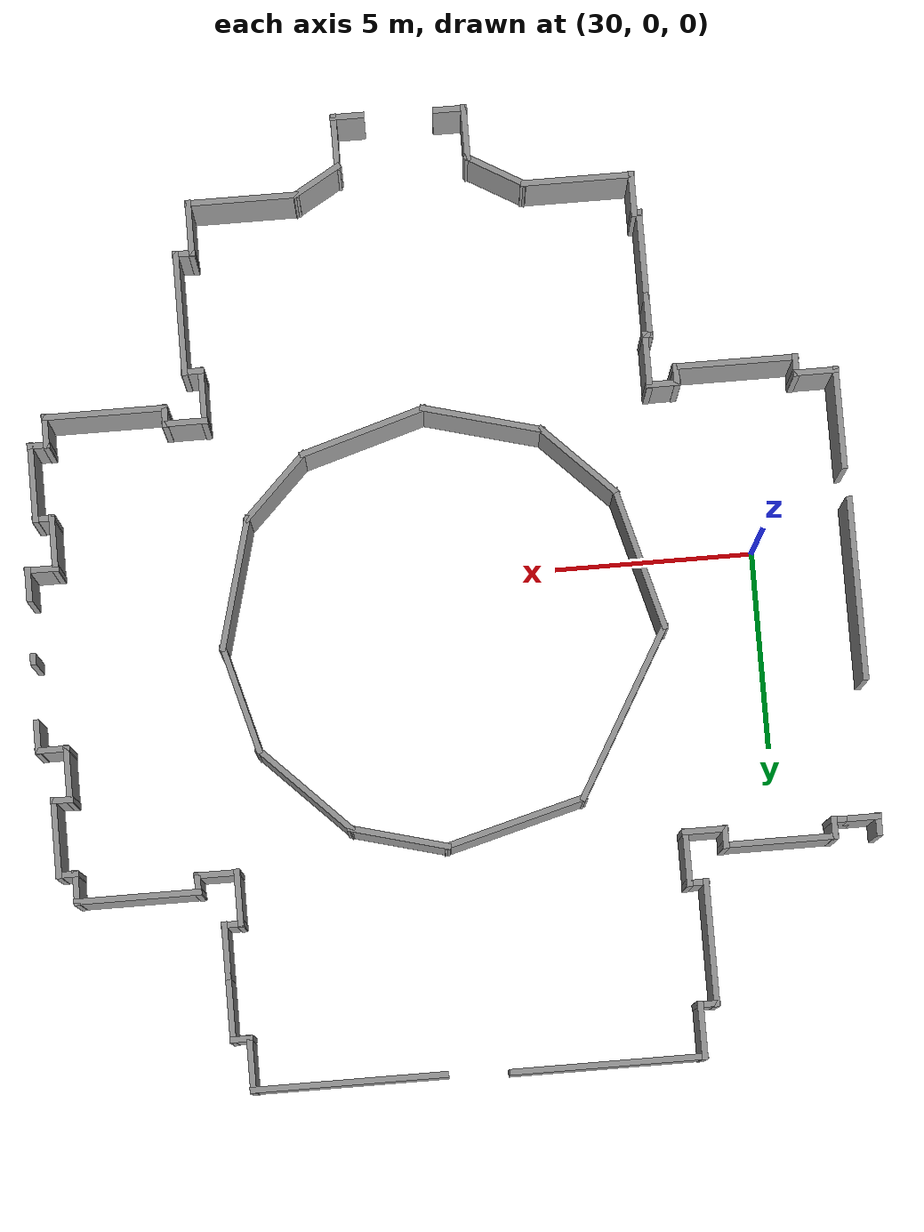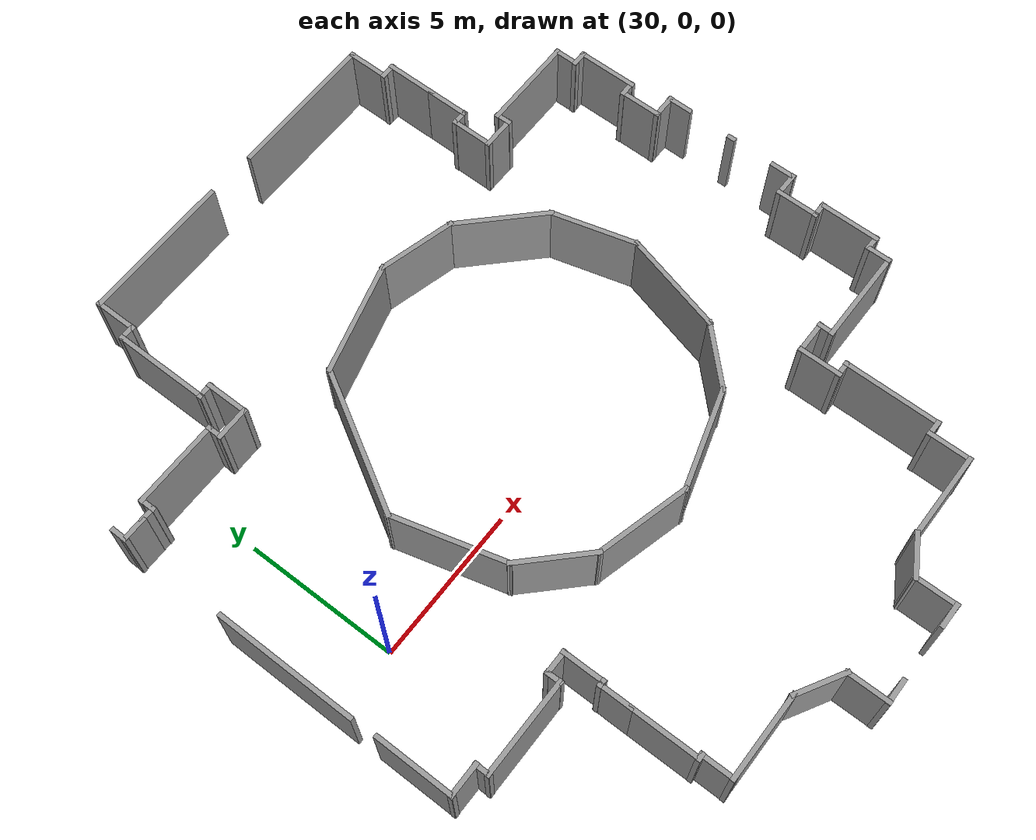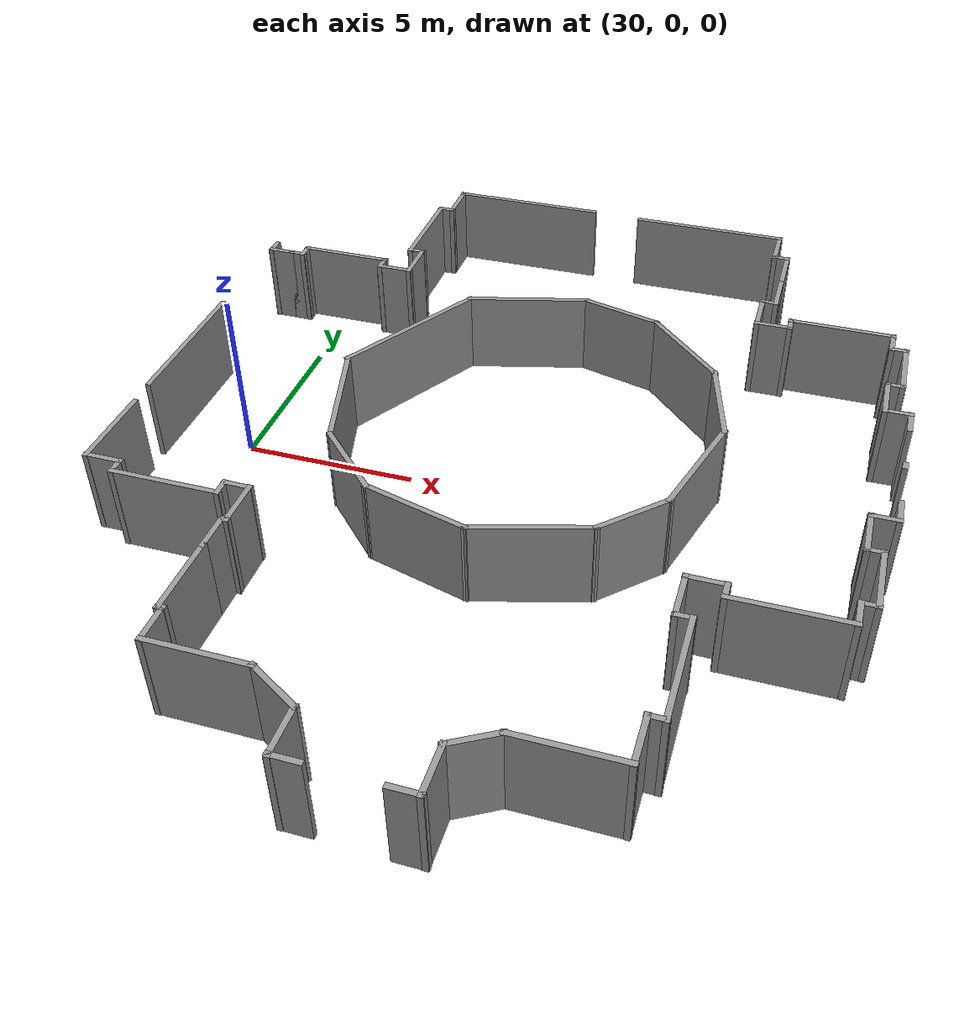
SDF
<sdf version="1.7">
 <model name="TD_n1">
  <pose>-8.28511 -2.84735 0 0 -0 0</pose>
  <link name="Wall_300">
   <collision name="Wall_300_Collision">
    <geometry><box><size>0.58 0.15 2.5</size></box></geometry>
    <pose>0 0 1.25 0 -0 0</pose>
   </collision>
   <visual name="Wall_300_Visual">
    <pose>0 0 1.25 0 -0 0</pose>
    <geometry><box><size>0.58 0.15 2.5</size></box></geometry>
    <material>
     <script><uri>file://media/materials/scripts/gazebo.material</uri><name>Gazebo/Grey</name></script>
     <ambient>1 1 1 1</ambient>
    </material>
    <meta><layer>0</layer></meta>
   </visual>
   <pose>35.9035 10.142 0 0 -0 -1.5708</pose>
  </link>
  <link name="Wall_301">
   <collision name="Wall_301_Collision">
    <geometry><box><size>0.87 0.15 2.5</size></box></geometry>
    <pose>0 0 1.25 0 -0 0</pose>
   </collision>
   <visual name="Wall_301_Visual">
    <pose>0 0 1.25 0 -0 0</pose>
    <geometry><box><size>0.87 0.15 2.5</size></box></geometry>
    <material>
     <script><uri>file://media/materials/scripts/gazebo.material</uri><name>Gazebo/Grey</name></script>
     <ambient>1 1 1 1</ambient>
    </material>
    <meta><layer>0</layer></meta>
   </visual>
   <pose>36.2515 9.93897 0 0 -0 0</pose>
  </link>
  <link name="Wall_302">
   <collision name="Wall_302_Collision">
    <geometry><box><size>0.58 0.15 2.5</size></box></geometry>
    <pose>0 0 1.25 0 -0 0</pose>
   </collision>
   <visual name="Wall_302_Visual">
    <pose>0 0 1.25 0 -0 0</pose>
    <geometry><box><size>0.58 0.15 2.5</size></box></geometry>
    <material>
     <script><uri>file://media/materials/scripts/gazebo.material</uri><name>Gazebo/Grey</name></script>
     <ambient>1 1 1 1</ambient>
    </material>
    <meta><layer>0</layer></meta>
   </visual>
   <pose>36.8025 9.93897 0 0 -0 0</pose>
  </link>
  <link name="Wall_303">
   <collision name="Wall_303_Collision">
    <geometry><box><size>0.58 0.15 2.5</size></box></geometry>
    <pose>0 0 1.25 0 -0 0</pose>
   </collision>
   <visual name="Wall_303_Visual">
    <pose>0 0 1.25 0 -0 0</pose>
    <geometry><box><size>0.58 0.15 2.5</size></box></geometry>
    <material>
     <script><uri>file://media/materials/scripts/gazebo.material</uri><name>Gazebo/Grey</name></script>
     <ambient>1 1 1 1</ambient>
    </material>
    <meta><layer>0</layer></meta>
   </visual>
   <pose>37.0055 10.142 0 0 -0 1.5708</pose>
  </link>
  <link name="Wall_304">
   <collision name="Wall_304_Collision">
    <geometry><box><size>2.9 0.15 2.5</size></box></geometry>
    <pose>0 0 1.25 0 -0 0</pose>
   </collision>
   <visual name="Wall_304_Visual">
    <pose>0 0 1.25 0 -0 0</pose>
    <geometry><box><size>2.9 0.15 2.5</size></box></geometry>
    <material>
     <script><uri>file://media/materials/scripts/gazebo.material</uri><name>Gazebo/Grey</name></script>
     <ambient>1 1 1 1</ambient>
    </material>
    <meta><layer>0</layer></meta>
   </visual>
   <pose>38.3685 10.345 0 0 -0 0</pose>
  </link>
  <link name="Wall_305">
   <collision name="Wall_305_Collision">
    <geometry><box><size>0.58 0.15 2.5</size></box></geometry>
    <pose>0 0 1.25 0 -0 0</pose>
   </collision>
   <visual name="Wall_305_Visual">
    <pose>0 0 1.25 0 -0 0</pose>
    <geometry><box><size>0.58 0.15 2.5</size></box></geometry>
    <material>
     <script><uri>file://media/materials/scripts/gazebo.material</uri><name>Gazebo/Grey</name></script>
     <ambient>1 1 1 1</ambient>
    </material>
    <meta><layer>0</layer></meta>
   </visual>
   <pose>39.7315 10.142 0 0 -0 -1.5708</pose>
  </link>
  <link name="Wall_306">
   <collision name="Wall_306_Collision">
    <geometry><box><size>1.16 0.15 2.5</size></box></geometry>
    <pose>0 0 1.25 0 -0 0</pose>
   </collision>
   <visual name="Wall_306_Visual">
    <pose>0 0 1.25 0 -0 0</pose>
    <geometry><box><size>1.16 0.15 2.5</size></box></geometry>
    <material>
     <script><uri>file://media/materials/scripts/gazebo.material</uri><name>Gazebo/Grey</name></script>
     <ambient>1 1 1 1</ambient>
    </material>
    <meta><layer>0</layer></meta>
   </visual>
   <pose>40.2245 9.93897 0 0 -0 0</pose>
  </link>
  <link name="Wall_307">
   <collision name="Wall_307_Collision">
    <geometry><box><size>1.45 0.15 2.5</size></box></geometry>
    <pose>0 0 1.25 0 -0 0</pose>
   </collision>
   <visual name="Wall_307_Visual">
    <pose>0 0 1.25 0 -0 0</pose>
    <geometry><box><size>1.45 0.15 2.5</size></box></geometry>
    <material>
     <script><uri>file://media/materials/scripts/gazebo.material</uri><name>Gazebo/Grey</name></script>
     <ambient>1 1 1 1</ambient>
    </material>
    <meta><layer>0</layer></meta>
   </visual>
   <pose>40.7175 10.577 0 0 -0 1.5708</pose>
  </link>
  <link name="Wall_308">
   <collision name="Wall_308_Collision">
    <geometry><box><size>0.58 0.15 2.5</size></box></geometry>
    <pose>0 0 1.25 0 -0 0</pose>
   </collision>
   <visual name="Wall_308_Visual">
    <pose>0 0 1.25 0 -0 0</pose>
    <geometry><box><size>0.58 0.15 2.5</size></box></geometry>
    <material>
     <script><uri>file://media/materials/scripts/gazebo.material</uri><name>Gazebo/Grey</name></script>
     <ambient>1 1 1 1</ambient>
    </material>
    <meta><layer>0</layer></meta>
   </visual>
   <pose>40.5145 11.215 0 0 -0 3.14159</pose>
  </link>
  <link name="Wall_309">
   <collision name="Wall_309_Collision">
    <geometry><box><size>3.19 0.15 2.5</size></box></geometry>
    <pose>0 0 1.25 0 -0 0</pose>
   </collision>
   <visual name="Wall_309_Visual">
    <pose>0 0 1.25 0 -0 0</pose>
    <geometry><box><size>3.19 0.15 2.5</size></box></geometry>
    <material>
     <script><uri>file://media/materials/scripts/gazebo.material</uri><name>Gazebo/Grey</name></script>
     <ambient>1 1 1 1</ambient>
    </material>
    <meta><layer>0</layer></meta>
   </visual>
   <pose>40.3115 12.723 0 0 -0 1.5708</pose>
  </link>
  <link name="Wall_310">
   <collision name="Wall_310_Collision">
    <geometry><box><size>0.58 0.15 2.5</size></box></geometry>
    <pose>0 0 1.25 0 -0 0</pose>
   </collision>
   <visual name="Wall_310_Visual">
    <pose>0 0 1.25 0 -0 0</pose>
    <geometry><box><size>0.58 0.15 2.5</size></box></geometry>
    <material>
     <script><uri>file://media/materials/scripts/gazebo.material</uri><name>Gazebo/Grey</name></script>
     <ambient>1 1 1 1</ambient>
    </material>
    <meta><layer>0</layer></meta>
   </visual>
   <pose>40.5145 14.231 0 0 -0 0</pose>
  </link>
  <link name="Wall_311">
   <collision name="Wall_311_Collision">
    <geometry><box><size>1.45 0.15 2.5</size></box></geometry>
    <pose>0 0 1.25 0 -0 0</pose>
   </collision>
   <visual name="Wall_311_Visual">
    <pose>0 0 1.25 0 -0 0</pose>
    <geometry><box><size>1.45 0.15 2.5</size></box></geometry>
    <material>
     <script><uri>file://media/materials/scripts/gazebo.material</uri><name>Gazebo/Grey</name></script>
     <ambient>1 1 1 1</ambient>
    </material>
    <meta><layer>0</layer></meta>
   </visual>
   <pose>40.7175 14.869 0 0 -0 1.5708</pose>
  </link>
  <link name="Wall_312">
   <collision name="Wall_312_Collision">
    <geometry><box><size>4.93 0.15 2.5</size></box></geometry>
    <pose>0 0 1.25 0 -0 0</pose>
   </collision>
   <visual name="Wall_312_Visual">
    <pose>0 0 1.25 0 -0 0</pose>
    <geometry><box><size>4.93 0.15 2.5</size></box></geometry>
    <material>
     <script><uri>file://media/materials/scripts/gazebo.material</uri><name>Gazebo/Grey</name></script>
     <ambient>1 1 1 1</ambient>
    </material>
    <meta><layer>0</layer></meta>
   </visual>
   <pose>43.0955 15.507 0 0 -0 0</pose>
  </link>
  <link name="Wall_314">
   <collision name="Wall_314_Collision">
    <geometry><box><size>4.64 0.15 2.5</size></box></geometry>
    <pose>0 0 1.25 0 -0 0</pose>
   </collision>
   <visual name="Wall_314_Visual">
    <pose>0 0 1.25 0 -0 0</pose>
    <geometry><box><size>4.64 0.15 2.5</size></box></geometry>
    <material>
     <script><uri>file://media/materials/scripts/gazebo.material</uri><name>Gazebo/Grey</name></script>
     <ambient>1 1 1 1</ambient>
    </material>
    <meta><layer>0</layer></meta>
   </visual>
   <pose>35.8878 4.20451 0 0 -0 -1.5708</pose>
  </link>
  <link name="Wall_316">
   <collision name="Wall_316_Collision">
    <geometry><box><size>2.61 0.15 2.5</size></box></geometry>
    <pose>0 0 1.25 0 -0 0</pose>
   </collision>
   <visual name="Wall_316_Visual">
    <pose>0 0 1.25 0 -0 0</pose>
    <geometry><box><size>2.61 0.15 2.5</size></box></geometry>
    <material>
     <script><uri>file://media/materials/scripts/gazebo.material</uri><name>Gazebo/Grey</name></script>
     <ambient>1 1 1 1</ambient>
    </material>
    <meta><layer>0</layer></meta>
   </visual>
   <pose>35.933 -0.128399 0 0 -0 -1.5708</pose>
  </link>
  <link name="Wall_317">
   <collision name="Wall_317_Collision">
    <geometry><box><size>1.16 0.15 2.5</size></box></geometry>
    <pose>0 0 1.25 0 -0 0</pose>
   </collision>
   <visual name="Wall_317_Visual">
    <pose>0 0 1.25 0 -0 0</pose>
    <geometry><box><size>1.16 0.15 2.5</size></box></geometry>
    <material>
     <script><uri>file://media/materials/scripts/gazebo.material</uri><name>Gazebo/Grey</name></script>
     <ambient>1 1 1 1</ambient>
    </material>
    <meta><layer>0</layer></meta>
   </visual>
   <pose>36.426 -1.3464 0 0 -0 0</pose>
  </link>
  <link name="Wall_318">
   <collision name="Wall_318_Collision">
    <geometry><box><size>0.58 0.15 2.5</size></box></geometry>
    <pose>0 0 1.25 0 -0 0</pose>
   </collision>
   <visual name="Wall_318_Visual">
    <pose>0 0 1.25 0 -0 0</pose>
    <geometry><box><size>0.58 0.15 2.5</size></box></geometry>
    <material>
     <script><uri>file://media/materials/scripts/gazebo.material</uri><name>Gazebo/Grey</name></script>
     <ambient>1 1 1 1</ambient>
    </material>
    <meta><layer>0</layer></meta>
   </visual>
   <pose>36.919 -1.5494 0 0 -0 -1.5708</pose>
  </link>
  <link name="Wall_319">
   <collision name="Wall_319_Collision">
    <geometry><box><size>3.19 0.15 2.5</size></box></geometry>
    <pose>0 0 1.25 0 -0 0</pose>
   </collision>
   <visual name="Wall_319_Visual">
    <pose>0 0 1.25 0 -0 0</pose>
    <geometry><box><size>3.19 0.15 2.5</size></box></geometry>
    <material>
     <script><uri>file://media/materials/scripts/gazebo.material</uri><name>Gazebo/Grey</name></script>
     <ambient>1 1 1 1</ambient>
    </material>
    <meta><layer>0</layer></meta>
   </visual>
   <pose>38.427 -1.7524 0 0 -0 0</pose>
  </link>
  <link name="Wall_320">
   <collision name="Wall_320_Collision">
    <geometry><box><size>0.58 0.15 2.5</size></box></geometry>
    <pose>0 0 1.25 0 -0 0</pose>
   </collision>
   <visual name="Wall_320_Visual">
    <pose>0 0 1.25 0 -0 0</pose>
    <geometry><box><size>0.58 0.15 2.5</size></box></geometry>
    <material>
     <script><uri>file://media/materials/scripts/gazebo.material</uri><name>Gazebo/Grey</name></script>
     <ambient>1 1 1 1</ambient>
    </material>
    <meta><layer>0</layer></meta>
   </visual>
   <pose>39.935 -1.5494 0 0 -0 1.5708</pose>
  </link>
  <link name="Wall_321">
   <collision name="Wall_321_Collision">
    <geometry><box><size>0.87 0.15 2.5</size></box></geometry>
    <pose>0 0 1.25 0 -0 0</pose>
   </collision>
   <visual name="Wall_321_Visual">
    <pose>0 0 1.25 0 -0 0</pose>
    <geometry><box><size>0.87 0.15 2.5</size></box></geometry>
    <material>
     <script><uri>file://media/materials/scripts/gazebo.material</uri><name>Gazebo/Grey</name></script>
     <ambient>1 1 1 1</ambient>
    </material>
    <meta><layer>0</layer></meta>
   </visual>
   <pose>40.283 -1.3464 0 0 -0 0</pose>
  </link>
  <link name="Wall_322">
   <collision name="Wall_322_Collision">
    <geometry><box><size>1.45 0.15 2.5</size></box></geometry>
    <pose>0 0 1.25 0 -0 0</pose>
   </collision>
   <visual name="Wall_322_Visual">
    <pose>0 0 1.25 0 -0 0</pose>
    <geometry><box><size>1.45 0.15 2.5</size></box></geometry>
    <material>
     <script><uri>file://media/materials/scripts/gazebo.material</uri><name>Gazebo/Grey</name></script>
     <ambient>1 1 1 1</ambient>
    </material>
    <meta><layer>0</layer></meta>
   </visual>
   <pose>40.631 -1.9844 0 0 -0 -1.5708</pose>
  </link>
  <link name="Wall_323">
   <collision name="Wall_323_Collision">
    <geometry><box><size>0.29 0.15 2.5</size></box></geometry>
    <pose>0 0 1.25 0 -0 0</pose>
   </collision>
   <visual name="Wall_323_Visual">
    <pose>0 0 1.25 0 -0 0</pose>
    <geometry><box><size>0.29 0.15 2.5</size></box></geometry>
    <material>
     <script><uri>file://media/materials/scripts/gazebo.material</uri><name>Gazebo/Grey</name></script>
     <ambient>1 1 1 1</ambient>
    </material>
    <meta><layer>0</layer></meta>
   </visual>
   <pose>40.573 -2.6224 0 0 -0 3.14159</pose>
  </link>
  <link name="Wall_324">
   <collision name="Wall_324_Collision">
    <geometry><box><size>1.16 0.15 2.5</size></box></geometry>
    <pose>0 0 1.25 0 -0 0</pose>
   </collision>
   <visual name="Wall_324_Visual">
    <pose>0 0 1.25 0 -0 0</pose>
    <geometry><box><size>1.16 0.15 2.5</size></box></geometry>
    <material>
     <script><uri>file://media/materials/scripts/gazebo.material</uri><name>Gazebo/Grey</name></script>
     <ambient>1 1 1 1</ambient>
    </material>
    <meta><layer>0</layer></meta>
   </visual>
   <pose>40.515 -3.1154 0 0 -0 -1.5708</pose>
  </link>
  <link name="Wall_326">
   <collision name="Wall_326_Collision">
    <geometry><box><size>3.19 0.15 2.5</size></box></geometry>
    <pose>0 0 1.25 0 -0 0</pose>
   </collision>
   <visual name="Wall_326_Visual">
    <pose>0 0 1.25 0 -0 0</pose>
    <geometry><box><size>3.19 0.15 2.5</size></box></geometry>
    <material>
     <script><uri>file://media/materials/scripts/gazebo.material</uri><name>Gazebo/Grey</name></script>
     <ambient>1 1 1 1</ambient>
    </material>
    <meta><layer>0</layer></meta>
   </visual>
   <pose>44.8911 -0.826603 0 0 -0 2.87979</pose>
  </link>
  <link name="Wall_327">
   <collision name="Wall_327_Collision">
    <geometry><box><size>2.61 0.15 2.5</size></box></geometry>
    <pose>0 0 1.25 0 -0 0</pose>
   </collision>
   <visual name="Wall_327_Visual">
    <pose>0 0 1.25 0 -0 0</pose>
    <geometry><box><size>2.61 0.15 2.5</size></box></geometry>
    <material>
     <script><uri>file://media/materials/scripts/gazebo.material</uri><name>Gazebo/Grey</name></script>
     <ambient>1 1 1 1</ambient>
    </material>
    <meta><layer>0</layer></meta>
   </visual>
   <pose>42.5733 0.424952 0 0 -0 2.35619</pose>
  </link>
  <link name="Wall_328">
   <collision name="Wall_328_Collision">
    <geometry><box><size>3.77 0.15 2.5</size></box></geometry>
    <pose>0 0 1.25 0 -0 0</pose>
   </collision>
   <visual name="Wall_328_Visual">
    <pose>0 0 1.25 0 -0 0</pose>
    <geometry><box><size>3.77 0.15 2.5</size></box></geometry>
    <material>
     <script><uri>file://media/materials/scripts/gazebo.material</uri><name>Gazebo/Grey</name></script>
     <ambient>1 1 1 1</ambient>
    </material>
    <meta><layer>0</layer></meta>
   </visual>
   <pose>41.2466 3.02294 0 0 -0 1.8326</pose>
  </link>
  <link name="Wall_329">
   <collision name="Wall_329_Collision">
    <geometry><box><size>4.93 0.15 2.5</size></box></geometry>
    <pose>0 0 1.25 0 -0 0</pose>
   </collision>
   <visual name="Wall_329_Visual">
    <pose>0 0 1.25 0 -0 0</pose>
    <geometry><box><size>4.93 0.15 2.5</size></box></geometry>
    <material>
     <script><uri>file://media/materials/scripts/gazebo.material</uri><name>Gazebo/Grey</name></script>
     <ambient>1 1 1 1</ambient>
    </material>
    <meta><layer>0</layer></meta>
   </visual>
   <pose>41.9703 6.81908 0 0 -0 1.0472</pose>
  </link>
  <link name="Wall_330">
   <collision name="Wall_330_Collision">
    <geometry><box><size>3.77 0.15 2.5</size></box></geometry>
    <pose>0 0 1.25 0 -0 0</pose>
   </collision>
   <visual name="Wall_330_Visual">
    <pose>0 0 1.25 0 -0 0</pose>
    <geometry><box><size>3.77 0.15 2.5</size></box></geometry>
    <material>
     <script><uri>file://media/materials/scripts/gazebo.material</uri><name>Gazebo/Grey</name></script>
     <ambient>1 1 1 1</ambient>
    </material>
    <meta><layer>0</layer></meta>
   </visual>
   <pose>44.8961 9.34385 0 0 -0 0.261799</pose>
  </link>
  <link name="Wall_331">
   <collision name="Wall_331_Collision">
    <geometry><box><size>2.61 0.15 2.5</size></box></geometry>
    <pose>0 0 1.25 0 -0 0</pose>
   </collision>
   <visual name="Wall_331_Visual">
    <pose>0 0 1.25 0 -0 0</pose>
    <geometry><box><size>2.61 0.15 2.5</size></box></geometry>
    <material>
     <script><uri>file://media/materials/scripts/gazebo.material</uri><name>Gazebo/Grey</name></script>
     <ambient>1 1 1 1</ambient>
    </material>
    <meta><layer>0</layer></meta>
   </visual>
   <pose>47.8093 9.49396 0 0 -0 -0.261799</pose>
  </link>
  <link name="Wall_332">
   <collision name="Wall_332_Collision">
    <geometry><box><size>3.19 0.15 2.5</size></box></geometry>
    <pose>0 0 1.25 0 -0 0</pose>
   </collision>
   <visual name="Wall_332_Visual">
    <pose>0 0 1.25 0 -0 0</pose>
    <geometry><box><size>3.19 0.15 2.5</size></box></geometry>
    <material>
     <script><uri>file://media/materials/scripts/gazebo.material</uri><name>Gazebo/Grey</name></script>
     <ambient>1 1 1 1</ambient>
    </material>
    <meta><layer>0</layer></meta>
   </visual>
   <pose>50.052 8.1124 0 0 -0 -0.785398</pose>
  </link>
  <link name="Wall_333">
   <collision name="Wall_333_Collision">
    <geometry><box><size>2.9 0.15 2.5</size></box></geometry>
    <pose>0 0 1.25 0 -0 0</pose>
   </collision>
   <visual name="Wall_333_Visual">
    <pose>0 0 1.25 0 -0 0</pose>
    <geometry><box><size>2.9 0.15 2.5</size></box></geometry>
    <material>
     <script><uri>file://media/materials/scripts/gazebo.material</uri><name>Gazebo/Grey</name></script>
     <ambient>1 1 1 1</ambient>
    </material>
    <meta><layer>0</layer></meta>
   </visual>
   <pose>51.4712 5.72953 0 0 -0 -1.309</pose>
  </link>
  <link name="Wall_334">
   <collision name="Wall_334_Collision">
    <geometry><box><size>3.48 0.15 2.5</size></box></geometry>
    <pose>0 0 1.25 0 -0 0</pose>
   </collision>
   <visual name="Wall_334_Visual">
    <pose>0 0 1.25 0 -0 0</pose>
    <geometry><box><size>3.48 0.15 2.5</size></box></geometry>
    <material>
     <script><uri>file://media/materials/scripts/gazebo.material</uri><name>Gazebo/Grey</name></script>
     <ambient>1 1 1 1</ambient>
    </material>
    <meta><layer>0</layer></meta>
   </visual>
   <pose>51.3961 2.81631 0 0 -0 -1.8326</pose>
  </link>
  <link name="Wall_335">
   <collision name="Wall_335_Collision">
    <geometry><box><size>2.32 0.15 2.5</size></box></geometry>
    <pose>0 0 1.25 0 -0 0</pose>
   </collision>
   <visual name="Wall_335_Visual">
    <pose>0 0 1.25 0 -0 0</pose>
    <geometry><box><size>2.32 0.15 2.5</size></box></geometry>
    <material>
     <script><uri>file://media/materials/scripts/gazebo.material</uri><name>Gazebo/Grey</name></script>
     <ambient>1 1 1 1</ambient>
    </material>
    <meta><layer>0</layer></meta>
   </visual>
   <pose>50.2096 0.460899 0 0 -0 -2.35619</pose>
  </link>
  <link name="Wall_336">
   <collision name="Wall_336_Collision">
    <geometry><box><size>3.41032 0.15 2.5</size></box></geometry>
    <pose>0 0 1.25 0 -0 0</pose>
   </collision>
   <visual name="Wall_336_Visual">
    <pose>0 0 1.25 0 -0 0</pose>
    <geometry><box><size>3.41032 0.15 2.5</size></box></geometry>
    <material>
     <script><uri>file://media/materials/scripts/gazebo.material</uri><name>Gazebo/Grey</name></script>
     <ambient>1 1 1 1</ambient>
    </material>
    <meta><layer>0</layer></meta>
   </visual>
   <pose>47.8993 -0.757364 0 0 -0 -2.85364</pose>
  </link>
  <link name="Wall_338">
   <collision name="Wall_338_Collision">
    <geometry><box><size>2.32 0.15 2.5</size></box></geometry>
    <pose>0 0 1.25 0 -0 0</pose>
   </collision>
   <visual name="Wall_338_Visual">
    <pose>0 0 1.25 0 -0 0</pose>
    <geometry><box><size>2.32 0.15 2.5</size></box></geometry>
    <material>
     <script><uri>file://media/materials/scripts/gazebo.material</uri><name>Gazebo/Grey</name></script>
     <ambient>1 1 1 1</ambient>
    </material>
    <meta><layer>0</layer></meta>
   </visual>
   <pose>40.515 -4.6814 0 0 -0 -1.5708</pose>
  </link>
  <link name="Wall_339">
   <collision name="Wall_339_Collision">
    <geometry><box><size>0.29 0.15 2.5</size></box></geometry>
    <pose>0 0 1.25 0 -0 0</pose>
   </collision>
   <visual name="Wall_339_Visual">
    <pose>0 0 1.25 0 -0 0</pose>
    <geometry><box><size>0.29 0.15 2.5</size></box></geometry>
    <material>
     <script><uri>file://media/materials/scripts/gazebo.material</uri><name>Gazebo/Grey</name></script>
     <ambient>1 1 1 1</ambient>
    </material>
    <meta><layer>0</layer></meta>
   </visual>
   <pose>40.573 -5.7544 0 0 -0 0</pose>
  </link>
  <link name="Wall_340">
   <collision name="Wall_340_Collision">
    <geometry><box><size>1.16 0.15 2.5</size></box></geometry>
    <pose>0 0 1.25 0 -0 0</pose>
   </collision>
   <visual name="Wall_340_Visual">
    <pose>0 0 1.25 0 -0 0</pose>
    <geometry><box><size>1.16 0.15 2.5</size></box></geometry>
    <material>
     <script><uri>file://media/materials/scripts/gazebo.material</uri><name>Gazebo/Grey</name></script>
     <ambient>1 1 1 1</ambient>
    </material>
    <meta><layer>0</layer></meta>
   </visual>
   <pose>40.631 -6.2474 0 0 -0 -1.5708</pose>
  </link>
  <link name="Wall_341">
   <collision name="Wall_341_Collision">
    <geometry><box><size>2.9 0.15 2.5</size></box></geometry>
    <pose>0 0 1.25 0 -0 0</pose>
   </collision>
   <visual name="Wall_341_Visual">
    <pose>0 0 1.25 0 -0 0</pose>
    <geometry><box><size>2.9 0.15 2.5</size></box></geometry>
    <material>
     <script><uri>file://media/materials/scripts/gazebo.material</uri><name>Gazebo/Grey</name></script>
     <ambient>1 1 1 1</ambient>
    </material>
    <meta><layer>0</layer></meta>
   </visual>
   <pose>41.994 -6.7404 0 0 -0 0</pose>
  </link>
  <link name="Wall_342">
   <collision name="Wall_342_Collision">
    <geometry><box><size>1.74 0.15 2.5</size></box></geometry>
    <pose>0 0 1.25 0 -0 0</pose>
   </collision>
   <visual name="Wall_342_Visual">
    <pose>0 0 1.25 0 -0 0</pose>
    <geometry><box><size>1.74 0.15 2.5</size></box></geometry>
    <material>
     <script><uri>file://media/materials/scripts/gazebo.material</uri><name>Gazebo/Grey</name></script>
     <ambient>1 1 1 1</ambient>
    </material>
    <meta><layer>0</layer></meta>
   </visual>
   <pose>44.0351 -7.1319 0 0 -0 -0.523599</pose>
  </link>
  <link name="Wall_343">
   <collision name="Wall_343_Collision">
    <geometry><box><size>1.45 0.15 2.5</size></box></geometry>
    <pose>0 0 1.25 0 -0 0</pose>
   </collision>
   <visual name="Wall_343_Visual">
    <pose>0 0 1.25 0 -0 0</pose>
    <geometry><box><size>1.45 0.15 2.5</size></box></geometry>
    <material>
     <script><uri>file://media/materials/scripts/gazebo.material</uri><name>Gazebo/Grey</name></script>
     <ambient>1 1 1 1</ambient>
    </material>
    <meta><layer>0</layer></meta>
   </visual>
   <pose>44.7131 -8.1614 0 0 -0 -1.5708</pose>
  </link>
  <link name="Wall_344">
   <collision name="Wall_344_Collision">
    <geometry><box><size>0.87 0.15 2.5</size></box></geometry>
    <pose>0 0 1.25 0 -0 0</pose>
   </collision>
   <visual name="Wall_344_Visual">
    <pose>0 0 1.25 0 -0 0</pose>
    <geometry><box><size>0.87 0.15 2.5</size></box></geometry>
    <material>
     <script><uri>file://media/materials/scripts/gazebo.material</uri><name>Gazebo/Grey</name></script>
     <ambient>1 1 1 1</ambient>
    </material>
    <meta><layer>0</layer></meta>
   </visual>
   <pose>45.0611 -8.7994 0 0 -0 0</pose>
  </link>
  <link name="Wall_346">
   <collision name="Wall_346_Collision">
    <geometry><box><size>0.87 0.15 2.5</size></box></geometry>
    <pose>0 0 1.25 0 -0 0</pose>
   </collision>
   <visual name="Wall_346_Visual">
    <pose>0 0 1.25 0 -0 0</pose>
    <geometry><box><size>0.87 0.15 2.5</size></box></geometry>
    <material>
     <script><uri>file://media/materials/scripts/gazebo.material</uri><name>Gazebo/Grey</name></script>
     <ambient>1 1 1 1</ambient>
    </material>
    <meta><layer>0</layer></meta>
   </visual>
   <pose>47.6716 -8.82837 0 0 -0 0</pose>
  </link>
  <link name="Wall_347">
   <collision name="Wall_347_Collision">
    <geometry><box><size>1.45 0.15 2.5</size></box></geometry>
    <pose>0 0 1.25 0 -0 0</pose>
   </collision>
   <visual name="Wall_347_Visual">
    <pose>0 0 1.25 0 -0 0</pose>
    <geometry><box><size>1.45 0.15 2.5</size></box></geometry>
    <material>
     <script><uri>file://media/materials/scripts/gazebo.material</uri><name>Gazebo/Grey</name></script>
     <ambient>1 1 1 1</ambient>
    </material>
    <meta><layer>0</layer></meta>
   </visual>
   <pose>48.0196 -8.19037 0 0 -0 1.5708</pose>
  </link>
  <link name="Wall_348">
   <collision name="Wall_348_Collision">
    <geometry><box><size>1.45 0.15 2.5</size></box></geometry>
    <pose>0 0 1.25 0 -0 0</pose>
   </collision>
   <visual name="Wall_348_Visual">
    <pose>0 0 1.25 0 -0 0</pose>
    <geometry><box><size>1.45 0.15 2.5</size></box></geometry>
    <material>
     <script><uri>file://media/materials/scripts/gazebo.material</uri><name>Gazebo/Grey</name></script>
     <ambient>1 1 1 1</ambient>
    </material>
    <meta><layer>0</layer></meta>
   </visual>
   <pose>48.5721 -7.23337 0 0 -0 0.523599</pose>
  </link>
  <link name="Wall_349">
   <collision name="Wall_349_Collision">
    <geometry><box><size>2.9 0.15 2.5</size></box></geometry>
    <pose>0 0 1.25 0 -0 0</pose>
   </collision>
   <visual name="Wall_349_Visual">
    <pose>0 0 1.25 0 -0 0</pose>
    <geometry><box><size>2.9 0.15 2.5</size></box></geometry>
    <material>
     <script><uri>file://media/materials/scripts/gazebo.material</uri><name>Gazebo/Grey</name></script>
     <ambient>1 1 1 1</ambient>
    </material>
    <meta><layer>0</layer></meta>
   </visual>
   <pose>50.4876 -6.91437 0 0 -0 0</pose>
  </link>
  <link name="Wall_350">
   <collision name="Wall_350_Collision">
    <geometry><box><size>1.45 0.15 2.5</size></box></geometry>
    <pose>0 0 1.25 0 -0 0</pose>
   </collision>
   <visual name="Wall_350_Visual">
    <pose>0 0 1.25 0 -0 0</pose>
    <geometry><box><size>1.45 0.15 2.5</size></box></geometry>
    <material>
     <script><uri>file://media/materials/scripts/gazebo.material</uri><name>Gazebo/Grey</name></script>
     <ambient>1 1 1 1</ambient>
    </material>
    <meta><layer>0</layer></meta>
   </visual>
   <pose>51.8506 -6.27637 0 0 -0 1.5708</pose>
  </link>
  <link name="Wall_351">
   <collision name="Wall_351_Collision">
    <geometry><box><size>0.58 0.15 2.5</size></box></geometry>
    <pose>0 0 1.25 0 -0 0</pose>
   </collision>
   <visual name="Wall_351_Visual">
    <pose>0 0 1.25 0 -0 0</pose>
    <geometry><box><size>0.58 0.15 2.5</size></box></geometry>
    <material>
     <script><uri>file://media/materials/scripts/gazebo.material</uri><name>Gazebo/Grey</name></script>
     <ambient>1 1 1 1</ambient>
    </material>
    <meta><layer>0</layer></meta>
   </visual>
   <pose>52.0536 -5.63837 0 0 -0 0</pose>
  </link>
  <link name="Wall_352">
   <collision name="Wall_352_Collision">
    <geometry><box><size>3.19 0.15 2.5</size></box></geometry>
    <pose>0 0 1.25 0 -0 0</pose>
   </collision>
   <visual name="Wall_352_Visual">
    <pose>0 0 1.25 0 -0 0</pose>
    <geometry><box><size>3.19 0.15 2.5</size></box></geometry>
    <material>
     <script><uri>file://media/materials/scripts/gazebo.material</uri><name>Gazebo/Grey</name></script>
     <ambient>1 1 1 1</ambient>
    </material>
    <meta><layer>0</layer></meta>
   </visual>
   <pose>52.2566 -4.13037 0 0 -0 1.5708</pose>
  </link>
  <link name="Wall_353">
   <collision name="Wall_353_Collision">
    <geometry><box><size>0.58 0.15 2.5</size></box></geometry>
    <pose>0 0 1.25 0 -0 0</pose>
   </collision>
   <visual name="Wall_353_Visual">
    <pose>0 0 1.25 0 -0 0</pose>
    <geometry><box><size>0.58 0.15 2.5</size></box></geometry>
    <material>
     <script><uri>file://media/materials/scripts/gazebo.material</uri><name>Gazebo/Grey</name></script>
     <ambient>1 1 1 1</ambient>
    </material>
    <meta><layer>0</layer></meta>
   </visual>
   <pose>52.0536 -2.62237 0 0 -0 3.14159</pose>
  </link>
  <link name="Wall_354">
   <collision name="Wall_354_Collision">
    <geometry><box><size>1.45 0.15 2.5</size></box></geometry>
    <pose>0 0 1.25 0 -0 0</pose>
   </collision>
   <visual name="Wall_354_Visual">
    <pose>0 0 1.25 0 -0 0</pose>
    <geometry><box><size>1.45 0.15 2.5</size></box></geometry>
    <material>
     <script><uri>file://media/materials/scripts/gazebo.material</uri><name>Gazebo/Grey</name></script>
     <ambient>1 1 1 1</ambient>
    </material>
    <meta><layer>0</layer></meta>
   </visual>
   <pose>51.8506 -1.98437 0 0 -0 1.5708</pose>
  </link>
  <link name="Wall_355">
   <collision name="Wall_355_Collision">
    <geometry><box><size>1.16 0.15 2.5</size></box></geometry>
    <pose>0 0 1.25 0 -0 0</pose>
   </collision>
   <visual name="Wall_355_Visual">
    <pose>0 0 1.25 0 -0 0</pose>
    <geometry><box><size>1.16 0.15 2.5</size></box></geometry>
    <material>
     <script><uri>file://media/materials/scripts/gazebo.material</uri><name>Gazebo/Grey</name></script>
     <ambient>1 1 1 1</ambient>
    </material>
    <meta><layer>0</layer></meta>
   </visual>
   <pose>52.3436 -1.34637 0 0 -0 0</pose>
  </link>
  <link name="Wall_356">
   <collision name="Wall_356_Collision">
    <geometry><box><size>0.58 0.15 2.5</size></box></geometry>
    <pose>0 0 1.25 0 -0 0</pose>
   </collision>
   <visual name="Wall_356_Visual">
    <pose>0 0 1.25 0 -0 0</pose>
    <geometry><box><size>0.58 0.15 2.5</size></box></geometry>
    <material>
     <script><uri>file://media/materials/scripts/gazebo.material</uri><name>Gazebo/Grey</name></script>
     <ambient>1 1 1 1</ambient>
    </material>
    <meta><layer>0</layer></meta>
   </visual>
   <pose>52.8366 -1.54937 0 0 -0 -1.5708</pose>
  </link>
  <link name="Wall_357">
   <collision name="Wall_357_Collision">
    <geometry><box><size>3.19 0.15 2.5</size></box></geometry>
    <pose>0 0 1.25 0 -0 0</pose>
   </collision>
   <visual name="Wall_357_Visual">
    <pose>0 0 1.25 0 -0 0</pose>
    <geometry><box><size>3.19 0.15 2.5</size></box></geometry>
    <material>
     <script><uri>file://media/materials/scripts/gazebo.material</uri><name>Gazebo/Grey</name></script>
     <ambient>1 1 1 1</ambient>
    </material>
    <meta><layer>0</layer></meta>
   </visual>
   <pose>54.3446 -1.75237 0 0 -0 0</pose>
  </link>
  <link name="Wall_358">
   <collision name="Wall_358_Collision">
    <geometry><box><size>0.87 0.15 2.5</size></box></geometry>
    <pose>0 0 1.25 0 -0 0</pose>
   </collision>
   <visual name="Wall_358_Visual">
    <pose>0 0 1.25 0 -0 0</pose>
    <geometry><box><size>0.87 0.15 2.5</size></box></geometry>
    <material>
     <script><uri>file://media/materials/scripts/gazebo.material</uri><name>Gazebo/Grey</name></script>
     <ambient>1 1 1 1</ambient>
    </material>
    <meta><layer>0</layer></meta>
   </visual>
   <pose>55.8526 -1.40437 0 0 -0 1.5708</pose>
  </link>
  <link name="Wall_359">
   <collision name="Wall_359_Collision">
    <geometry><box><size>0.58 0.15 2.5</size></box></geometry>
    <pose>0 0 1.25 0 -0 0</pose>
   </collision>
   <visual name="Wall_359_Visual">
    <pose>0 0 1.25 0 -0 0</pose>
    <geometry><box><size>0.58 0.15 2.5</size></box></geometry>
    <material>
     <script><uri>file://media/materials/scripts/gazebo.material</uri><name>Gazebo/Grey</name></script>
     <ambient>1 1 1 1</ambient>
    </material>
    <meta><layer>0</layer></meta>
   </visual>
   <pose>56.0556 -1.05636 0 0 -0 0</pose>
  </link>
  <link name="Wall_360">
   <collision name="Wall_360_Collision">
    <geometry><box><size>2.03 0.15 2.5</size></box></geometry>
    <pose>0 0 1.25 0 -0 0</pose>
   </collision>
   <visual name="Wall_360_Visual">
    <pose>0 0 1.25 0 -0 0</pose>
    <geometry><box><size>2.03 0.15 2.5</size></box></geometry>
    <material>
     <script><uri>file://media/materials/scripts/gazebo.material</uri><name>Gazebo/Grey</name></script>
     <ambient>1 1 1 1</ambient>
    </material>
    <meta><layer>0</layer></meta>
   </visual>
   <pose>56.2586 -0.128363 0 0 -0 1.5708</pose>
  </link>
  <link name="Wall_361">
   <collision name="Wall_361_Collision">
    <geometry><box><size>0.58 0.15 2.5</size></box></geometry>
    <pose>0 0 1.25 0 -0 0</pose>
   </collision>
   <visual name="Wall_361_Visual">
    <pose>0 0 1.25 0 -0 0</pose>
    <geometry><box><size>0.58 0.15 2.5</size></box></geometry>
    <material>
     <script><uri>file://media/materials/scripts/gazebo.material</uri><name>Gazebo/Grey</name></script>
     <ambient>1 1 1 1</ambient>
    </material>
    <meta><layer>0</layer></meta>
   </visual>
   <pose>56.0556 0.799637 0 0 -0 3.14159</pose>
  </link>
  <link name="Wall_362">
   <collision name="Wall_362_Collision">
    <geometry><box><size>1.45 0.15 2.5</size></box></geometry>
    <pose>0 0 1.25 0 -0 0</pose>
   </collision>
   <visual name="Wall_362_Visual">
    <pose>0 0 1.25 0 -0 0</pose>
    <geometry><box><size>1.45 0.15 2.5</size></box></geometry>
    <material>
     <script><uri>file://media/materials/scripts/gazebo.material</uri><name>Gazebo/Grey</name></script>
     <ambient>1 1 1 1</ambient>
    </material>
    <meta><layer>0</layer></meta>
   </visual>
   <pose>55.8526 1.43763 0 0 -0 1.5708</pose>
  </link>
  <link name="Wall_363">
   <collision name="Wall_363_Collision">
    <geometry><box><size>0.87 0.15 2.5</size></box></geometry>
    <pose>0 0 1.25 0 -0 0</pose>
   </collision>
   <visual name="Wall_363_Visual">
    <pose>0 0 1.25 0 -0 0</pose>
    <geometry><box><size>0.87 0.15 2.5</size></box></geometry>
    <material>
     <script><uri>file://media/materials/scripts/gazebo.material</uri><name>Gazebo/Grey</name></script>
     <ambient>1 1 1 1</ambient>
    </material>
    <meta><layer>0</layer></meta>
   </visual>
   <pose>56.2006 2.07563 0 0 -0 0</pose>
  </link>
  <link name="Wall_364">
   <collision name="Wall_364_Collision">
    <geometry><box><size>0.87 0.15 2.5</size></box></geometry>
    <pose>0 0 1.25 0 -0 0</pose>
   </collision>
   <visual name="Wall_364_Visual">
    <pose>0 0 1.25 0 -0 0</pose>
    <geometry><box><size>0.87 0.15 2.5</size></box></geometry>
    <material>
     <script><uri>file://media/materials/scripts/gazebo.material</uri><name>Gazebo/Grey</name></script>
     <ambient>1 1 1 1</ambient>
    </material>
    <meta><layer>0</layer></meta>
   </visual>
   <pose>56.5486 2.42363 0 0 -0 1.5708</pose>
  </link>
  <link name="Wall_368">
   <collision name="Wall_368_Collision">
    <geometry><box><size>0.29 0.15 2.5</size></box></geometry>
    <pose>0 0 1.25 0 -0 0</pose>
   </collision>
   <visual name="Wall_368_Visual">
    <pose>0 0 1.25 0 -0 0</pose>
    <geometry><box><size>0.29 0.15 2.5</size></box></geometry>
    <material>
     <script><uri>file://media/materials/scripts/gazebo.material</uri><name>Gazebo/Grey</name></script>
     <ambient>1 1 1 1</ambient>
    </material>
    <meta><layer>0</layer></meta>
   </visual>
   <pose>56.5673 4.31394 0 0 -0 -1.5708</pose>
  </link>
  <link name="Wall_370">
   <collision name="Wall_370_Collision">
    <geometry><box><size>0.87 0.15 2.5</size></box></geometry>
    <pose>0 0 1.25 0 -0 0</pose>
   </collision>
   <visual name="Wall_370_Visual">
    <pose>0 0 1.25 0 -0 0</pose>
    <geometry><box><size>0.87 0.15 2.5</size></box></geometry>
    <material>
     <script><uri>file://media/materials/scripts/gazebo.material</uri><name>Gazebo/Grey</name></script>
     <ambient>1 1 1 1</ambient>
    </material>
    <meta><layer>0</layer></meta>
   </visual>
   <pose>56.6028 6.26351 0 0 -0 1.5708</pose>
  </link>
  <link name="Wall_371">
   <collision name="Wall_371_Collision">
    <geometry><box><size>0.87 0.15 2.5</size></box></geometry>
    <pose>0 0 1.25 0 -0 0</pose>
   </collision>
   <visual name="Wall_371_Visual">
    <pose>0 0 1.25 0 -0 0</pose>
    <geometry><box><size>0.87 0.15 2.5</size></box></geometry>
    <material>
     <script><uri>file://media/materials/scripts/gazebo.material</uri><name>Gazebo/Grey</name></script>
     <ambient>1 1 1 1</ambient>
    </material>
    <meta><layer>0</layer></meta>
   </visual>
   <pose>56.2548 6.61151 0 0 -0 3.14159</pose>
  </link>
  <link name="Wall_372">
   <collision name="Wall_372_Collision">
    <geometry><box><size>1.45 0.15 2.5</size></box></geometry>
    <pose>0 0 1.25 0 -0 0</pose>
   </collision>
   <visual name="Wall_372_Visual">
    <pose>0 0 1.25 0 -0 0</pose>
    <geometry><box><size>1.45 0.15 2.5</size></box></geometry>
    <material>
     <script><uri>file://media/materials/scripts/gazebo.material</uri><name>Gazebo/Grey</name></script>
     <ambient>1 1 1 1</ambient>
    </material>
    <meta><layer>0</layer></meta>
   </visual>
   <pose>55.9068 7.24951 0 0 -0 1.5708</pose>
  </link>
  <link name="Wall_373">
   <collision name="Wall_373_Collision">
    <geometry><box><size>0.58 0.15 2.5</size></box></geometry>
    <pose>0 0 1.25 0 -0 0</pose>
   </collision>
   <visual name="Wall_373_Visual">
    <pose>0 0 1.25 0 -0 0</pose>
    <geometry><box><size>0.58 0.15 2.5</size></box></geometry>
    <material>
     <script><uri>file://media/materials/scripts/gazebo.material</uri><name>Gazebo/Grey</name></script>
     <ambient>1 1 1 1</ambient>
    </material>
    <meta><layer>0</layer></meta>
   </visual>
   <pose>56.1098 7.88751 0 0 -0 0</pose>
  </link>
  <link name="Wall_374">
   <collision name="Wall_374_Collision">
    <geometry><box><size>2.03 0.15 2.5</size></box></geometry>
    <pose>0 0 1.25 0 -0 0</pose>
   </collision>
   <visual name="Wall_374_Visual">
    <pose>0 0 1.25 0 -0 0</pose>
    <geometry><box><size>2.03 0.15 2.5</size></box></geometry>
    <material>
     <script><uri>file://media/materials/scripts/gazebo.material</uri><name>Gazebo/Grey</name></script>
     <ambient>1 1 1 1</ambient>
    </material>
    <meta><layer>0</layer></meta>
   </visual>
   <pose>56.3128 8.81551 0 0 -0 1.5708</pose>
  </link>
  <link name="Wall_375">
   <collision name="Wall_375_Collision">
    <geometry><box><size>0.58 0.15 2.5</size></box></geometry>
    <pose>0 0 1.25 0 -0 0</pose>
   </collision>
   <visual name="Wall_375_Visual">
    <pose>0 0 1.25 0 -0 0</pose>
    <geometry><box><size>0.58 0.15 2.5</size></box></geometry>
    <material>
     <script><uri>file://media/materials/scripts/gazebo.material</uri><name>Gazebo/Grey</name></script>
     <ambient>1 1 1 1</ambient>
    </material>
    <meta><layer>0</layer></meta>
   </visual>
   <pose>56.1098 9.74351 0 0 -0 3.14159</pose>
  </link>
  <link name="Wall_376">
   <collision name="Wall_376_Collision">
    <geometry><box><size>0.87 0.15 2.5</size></box></geometry>
    <pose>0 0 1.25 0 -0 0</pose>
   </collision>
   <visual name="Wall_376_Visual">
    <pose>0 0 1.25 0 -0 0</pose>
    <geometry><box><size>0.87 0.15 2.5</size></box></geometry>
    <material>
     <script><uri>file://media/materials/scripts/gazebo.material</uri><name>Gazebo/Grey</name></script>
     <ambient>1 1 1 1</ambient>
    </material>
    <meta><layer>0</layer></meta>
   </visual>
   <pose>55.9068 10.0915 0 0 -0 1.5708</pose>
  </link>
  <link name="Wall_377">
   <collision name="Wall_377_Collision">
    <geometry><box><size>3.19 0.15 2.5</size></box></geometry>
    <pose>0 0 1.25 0 -0 0</pose>
   </collision>
   <visual name="Wall_377_Visual">
    <pose>0 0 1.25 0 -0 0</pose>
    <geometry><box><size>3.19 0.15 2.5</size></box></geometry>
    <material>
     <script><uri>file://media/materials/scripts/gazebo.material</uri><name>Gazebo/Grey</name></script>
     <ambient>1 1 1 1</ambient>
    </material>
    <meta><layer>0</layer></meta>
   </visual>
   <pose>54.3988 10.4395 0 0 -0 3.14159</pose>
  </link>
  <link name="Wall_378">
   <collision name="Wall_378_Collision">
    <geometry><box><size>0.58 0.15 2.5</size></box></geometry>
    <pose>0 0 1.25 0 -0 0</pose>
   </collision>
   <visual name="Wall_378_Visual">
    <pose>0 0 1.25 0 -0 0</pose>
    <geometry><box><size>0.58 0.15 2.5</size></box></geometry>
    <material>
     <script><uri>file://media/materials/scripts/gazebo.material</uri><name>Gazebo/Grey</name></script>
     <ambient>1 1 1 1</ambient>
    </material>
    <meta><layer>0</layer></meta>
   </visual>
   <pose>52.8908 10.2365 0 0 -0 -1.5708</pose>
  </link>
  <link name="Wall_379">
   <collision name="Wall_379_Collision">
    <geometry><box><size>1.16 0.15 2.5</size></box></geometry>
    <pose>0 0 1.25 0 -0 0</pose>
   </collision>
   <visual name="Wall_379_Visual">
    <pose>0 0 1.25 0 -0 0</pose>
    <geometry><box><size>1.16 0.15 2.5</size></box></geometry>
    <material>
     <script><uri>file://media/materials/scripts/gazebo.material</uri><name>Gazebo/Grey</name></script>
     <ambient>1 1 1 1</ambient>
    </material>
    <meta><layer>0</layer></meta>
   </visual>
   <pose>52.3978 10.0335 0 0 -0 3.14159</pose>
  </link>
  <link name="Wall_380">
   <collision name="Wall_380_Collision">
    <geometry><box><size>1.45 0.15 2.5</size></box></geometry>
    <pose>0 0 1.25 0 -0 0</pose>
   </collision>
   <visual name="Wall_380_Visual">
    <pose>0 0 1.25 0 -0 0</pose>
    <geometry><box><size>1.45 0.15 2.5</size></box></geometry>
    <material>
     <script><uri>file://media/materials/scripts/gazebo.material</uri><name>Gazebo/Grey</name></script>
     <ambient>1 1 1 1</ambient>
    </material>
    <meta><layer>0</layer></meta>
   </visual>
   <pose>51.9048 10.6715 0 0 -0 1.5708</pose>
  </link>
  <link name="Wall_381">
   <collision name="Wall_381_Collision">
    <geometry><box><size>0.58 0.15 2.5</size></box></geometry>
    <pose>0 0 1.25 0 -0 0</pose>
   </collision>
   <visual name="Wall_381_Visual">
    <pose>0 0 1.25 0 -0 0</pose>
    <geometry><box><size>0.58 0.15 2.5</size></box></geometry>
    <material>
     <script><uri>file://media/materials/scripts/gazebo.material</uri><name>Gazebo/Grey</name></script>
     <ambient>1 1 1 1</ambient>
    </material>
    <meta><layer>0</layer></meta>
   </visual>
   <pose>52.1078 11.3095 0 0 -0 0</pose>
  </link>
  <link name="Wall_382">
   <collision name="Wall_382_Collision">
    <geometry><box><size>1.45 0.15 2.5</size></box></geometry>
    <pose>0 0 1.25 0 -0 0</pose>
   </collision>
   <visual name="Wall_382_Visual">
    <pose>0 0 1.25 0 -0 0</pose>
    <geometry><box><size>1.45 0.15 2.5</size></box></geometry>
    <material>
     <script><uri>file://media/materials/scripts/gazebo.material</uri><name>Gazebo/Grey</name></script>
     <ambient>1 1 1 1</ambient>
    </material>
    <meta><layer>0</layer></meta>
   </visual>
   <pose>52.3108 11.9475 0 0 -0 1.5708</pose>
  </link>
  <link name="Wall_384">
   <collision name="Wall_384_Collision">
    <geometry><box><size>1.74 0.15 2.5</size></box></geometry>
    <pose>0 0 1.25 0 -0 0</pose>
   </collision>
   <visual name="Wall_384_Visual">
    <pose>0 0 1.25 0 -0 0</pose>
    <geometry><box><size>1.74 0.15 2.5</size></box></geometry>
    <material>
     <script><uri>file://media/materials/scripts/gazebo.material</uri><name>Gazebo/Grey</name></script>
     <ambient>1 1 1 1</ambient>
    </material>
    <meta><layer>0</layer></meta>
   </visual>
   <pose>52.3108 13.3685 0 0 -0 1.5708</pose>
  </link>
  <link name="Wall_385">
   <collision name="Wall_385_Collision">
    <geometry><box><size>0.58 0.15 2.5</size></box></geometry>
    <pose>0 0 1.25 0 -0 0</pose>
   </collision>
   <visual name="Wall_385_Visual">
    <pose>0 0 1.25 0 -0 0</pose>
    <geometry><box><size>0.58 0.15 2.5</size></box></geometry>
    <material>
     <script><uri>file://media/materials/scripts/gazebo.material</uri><name>Gazebo/Grey</name></script>
     <ambient>1 1 1 1</ambient>
    </material>
    <meta><layer>0</layer></meta>
   </visual>
   <pose>52.1078 14.1515 0 0 -0 3.14159</pose>
  </link>
  <link name="Wall_386">
   <collision name="Wall_386_Collision">
    <geometry><box><size>1.45 0.15 2.5</size></box></geometry>
    <pose>0 0 1.25 0 -0 0</pose>
   </collision>
   <visual name="Wall_386_Visual">
    <pose>0 0 1.25 0 -0 0</pose>
    <geometry><box><size>1.45 0.15 2.5</size></box></geometry>
    <material>
     <script><uri>file://media/materials/scripts/gazebo.material</uri><name>Gazebo/Grey</name></script>
     <ambient>1 1 1 1</ambient>
    </material>
    <meta><layer>0</layer></meta>
   </visual>
   <pose>51.9048 14.7895 0 0 -0 1.5708</pose>
  </link>
  <link name="Wall_387">
   <collision name="Wall_387_Collision">
    <geometry><box><size>4.93 0.15 2.5</size></box></geometry>
    <pose>0 0 1.25 0 -0 0</pose>
   </collision>
   <visual name="Wall_387_Visual">
    <pose>0 0 1.25 0 -0 0</pose>
    <geometry><box><size>4.93 0.15 2.5</size></box></geometry>
    <material>
     <script><uri>file://media/materials/scripts/gazebo.material</uri><name>Gazebo/Grey</name></script>
     <ambient>1 1 1 1</ambient>
    </material>
    <meta><layer>0</layer></meta>
   </visual>
   <pose>49.5268 15.4275 0 0 -0 3.14159</pose>
  </link>
  <static>1</static>
 </model>
</sdf>
